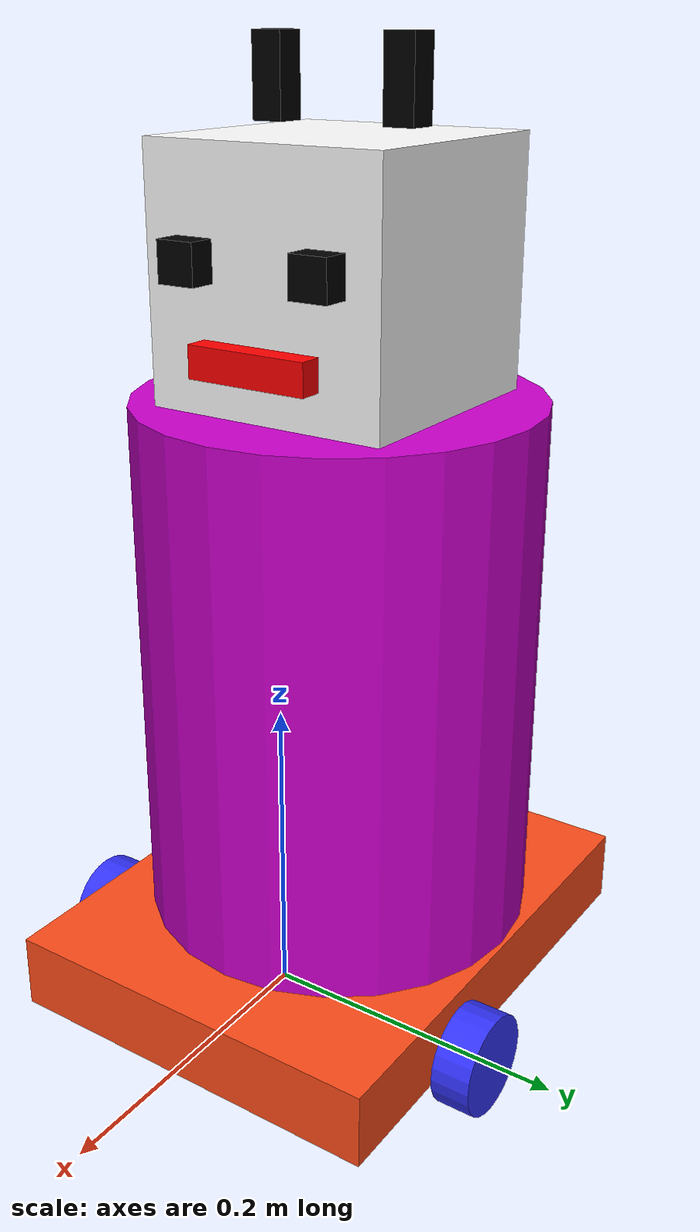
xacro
<?xml version="1.0" ?>
<robot name='robot' xmlns:xacro="http://ros.org/wiki/xacro">

    <xacro:include filename="$(find robot_description)/urdf/gazebo.urdf.xacro" />

    <xacro:property name="body_length" value="0.35"/>
    <xacro:property name="body_radius" value="0.13"/>
    <xacro:property name="body_mass" value="0.1"/>
    <xacro:property name="head_size" value="0.16"/>
    <xacro:property name="head_mass" value="0.1"/>
    <xacro:property name="antenna_x_y" value="0.02"/>
    <xacro:property name="antenna_z" value="0.05"/>
    <xacro:property name="antenna_mass" value="0.2"/>
    <xacro:property name="eye_size" value="0.025"/>
    <xacro:property name="eye_mass" value="0.05"/>
    <xacro:property name="mouth_mass" value="0.15"/>
    <xacro:property name="mouth_x" value="0.02"/>
    <xacro:property name="mouth_y" value="0.08"/>
    <xacro:property name="mouth_z" value="0.02"/>
    <xacro:property name="chassis_length" value="0.335"/>
    <xacro:property name="chassis_width" value="0.265"/>
    <xacro:property name="chassis_height" value="0.05"/>
    <xacro:property name="wheel_radius" value="0.033"/>
    <xacro:property name="wheel_thickness" value="0.026"/>
    <xacro:property name="wheel_mass" value="0.05"/>
    <xacro:property name="wheel_offset_x" value="0.226"/>
    <xacro:property name="wheel_offset_y" value="0.1485"/>
    <xacro:property name="wheel_offset_z" value="0.01"/>
    <xacro:property name="caster_wheel_radius" value="0.01"/>
    <xacro:property name="caster_wheel_mass" value="0.01"/>
    <xacro:property name="caster_wheel_offset_x" value="0.075"/>
    <xacro:property name="caster_wheel_offset_z" value="${wheel_offset_z - wheel_radius + caster_wheel_radius}"/>
    <xacro:property name="mass" value="1.0"/>

    <material name="white">
        <color rgba="1 1 1 1" />
    </material>

    <material name="orange">
        <color rgba="1 0.3 0.1 1"/>
    </material>

    <material name="blue">
        <color rgba="0.2 0.2 1 1"/>
    </material>

    <material name="black">
        <color rgba="0 0 0 1"/>
    </material>

    <material name="red">
        <color rgba="1 0 0 1"/>
    </material>

    <material name="pink">
      <color rgba="0.8 0 0.8 1"/>
    </material>

    <link name="base_link">
    </link>

    <link name="base_footprint">
    </link>

    <joint name="base_footprint_joint" type="fixed">
        <parent link="base_link"/>
        <child link="base_footprint"/>
        <origin xyz="0 0 -0.138" rpy="0 0 0"/>
    </joint>

    <joint name="chassis_joint" type="fixed">
        <parent link="base_link"/>
        <child link="chassis"/>
        <origin xyz="${-wheel_offset_x} 0 ${-wheel_offset_z}"/>
    </joint>

    <link name='chassis'>

    <inertial>
        <origin xyz="${chassis_length/2} 0 ${chassis_height/2}" rpy="0 0 0"/>
        <mass value="${mass}" />
        <inertia ixx="${(1/12) * mass * (chassis_width*chassis_width+chassis_height*chassis_height)}" ixy="0.0" ixz="0.0"
                 iyy="${(1/12) * mass * (chassis_length*chassis_length+chassis_height*chassis_height)}" iyz="0.0"
                 izz="${(1/12) * mass * (chassis_length*chassis_length+chassis_width*chassis_width)}" />
    </inertial>
    <visual>
        <origin xyz="${chassis_length/2} 0 ${chassis_height/2}"/>
        <geometry>
            <box size="${chassis_length} ${chassis_width} ${chassis_height}"/>
        </geometry>
        <material name="orange"/>
    </visual>
    <collision>
        <origin xyz="${chassis_length/2} 0 ${chassis_height/2}"/>
        <geometry>
            <box size="${chassis_length} ${chassis_width} ${chassis_height}"/>
        </geometry>
    </collision>
    </link>

    <link name="body">
    <visual>
      <geometry>
        <cylinder length="${body_length}" radius="${body_radius}"/>
      </geometry>
      <material name="pink"/>
    </visual>
    <collision>
      <geometry>
        <cylinder length="${body_length}" radius="${body_radius}"/>
      </geometry>
    </collision>
    <inertial>
      <mass value="${body_mass}"/>
      <inertia ixx="${(1/12) * body_mass * (3*body_radius*body_radius + body_length*body_length)}" ixy="0.0" ixz="0.0"
               iyy="${(1/12) * body_mass * (3*body_radius*body_radius + body_length*body_length)}" iyz="0.0"
               izz="${(1/2) * body_mass * (body_radius*body_length)}" />
    </inertial>
  </link>

  <joint name="body_joint" type="fixed">
    <parent link="chassis"/>
    <child link="body"/>
    <origin rpy="0 0 0" xyz="0.16 0 0.225"/>
  </joint>

  <link name="head">
    <visual>
      <geometry>
        <box size="${head_size} ${head_size} ${head_size}"/>
      </geometry>
      <material name="white"/>
    </visual>
    <collision>
      <geometry>
        <box size="${head_size} ${head_size} ${head_size}"/>
      </geometry>
    </collision>
    <inertial>
      <mass value="${head_mass}"/>
      <inertia ixx="${(1/12) * head_mass * (head_size*head_size+head_size*head_size)}" ixy="0.0" ixz="0.0"
               iyy="${(1/12) * head_mass * (head_size*head_size+head_size*head_size)}" iyz="0.0"
               izz="${(1/12) * head_mass * (head_size*head_size+head_size*head_size)}" />
    </inertial>
  </link>

  <joint name="head_joint" type="fixed">
    <parent link="body"/>
    <child link="head"/>
    <origin rpy="0 0 0" xyz="0 0 0.25"/>
  </joint>

  <link name="right_antenna">
    <visual>
      <geometry>
        <box size="${antenna_x_y} ${antenna_x_y} ${antenna_z}"/>
      </geometry>
      <material name="black"/>
    </visual>
    <collision>
      <geometry>
        <box size="${antenna_x_y} ${antenna_x_y} ${antenna_z}"/>
      </geometry>
      <origin rpy="0 1.57075 0" xyz="0 0 0"/>
    </collision>
    <inertial>
      <mass value="${antenna_mass}"/>
      <inertia ixx="${(1/12) * antenna_mass * (antenna_x_y*antenna_x_y+antenna_z*antenna_z)}" ixy="0.0" ixz="0.0"
               iyy="${(1/12) * antenna_mass * (antenna_x_y*antenna_x_y+antenna_z*antenna_z)}" iyz="0.0"
               izz="${(1/12) * antenna_mass * (antenna_x_y*antenna_x_y+antenna_x_y*antenna_x_y)}" />
    </inertial>
  </link>

  <joint name="right_antenna_joint" type="fixed">
    <parent link="head"/>
    <child link="right_antenna"/>
    <origin rpy="0 0 0" xyz="0 0.045 0.11"/>
  </joint>

  <link name="left_antenna">
    <visual>
      <geometry>
        <box size="${antenna_x_y} ${antenna_x_y} ${antenna_z}"/>
      </geometry>
      <material name="black"/>
    </visual>
    <collision>
      <geometry>
        <box size="${antenna_x_y} ${antenna_x_y} ${antenna_z}"/>
      </geometry>
      <origin rpy="0 1.57075 0" xyz="0 0 0"/>
    </collision>
    <inertial>
      <mass value="${antenna_mass}"/>
      <inertia ixx="${(1/12) * antenna_mass * (antenna_x_y*antenna_x_y+antenna_z*antenna_z)}" ixy="0.0" ixz="0.0"
               iyy="${(1/12) * antenna_mass * (antenna_x_y*antenna_x_y+antenna_z*antenna_z)}" iyz="0.0"
               izz="${(1/12) * antenna_mass * (antenna_x_y*antenna_x_y+antenna_x_y*antenna_x_y)}" />
    </inertial>
  </link>

  <joint name="left_antenna_joint" type="fixed">
    <parent link="head"/>
    <child link="left_antenna"/>
    <origin rpy="0 0 0" xyz="0 -0.045 0.11"/>
  </joint>

  <link name="right_eye">
    <visual>
      <geometry>
        <box size="${eye_size} ${eye_size} ${eye_size}"/>
      </geometry>
      <material name="black"/>
    </visual>
    <collision>
      <geometry>
        <box size="${eye_size} ${eye_size} ${eye_size}"/>
      </geometry>
      <origin rpy="0 1.57075 0" xyz="0 0 0"/>
    </collision>
    <inertial>
      <mass value="${eye_mass}"/>
      <inertia ixx="${(1/12) * eye_mass * (eye_size*eye_size+eye_size*eye_size)}" ixy="0.0" ixz="0.0"
               iyy="${(1/12) * eye_mass * (eye_size*eye_size+eye_size*eye_size)}" iyz="0.0"
               izz="${(1/12) * eye_mass * (eye_size*eye_size+eye_size*eye_size)}" />
    </inertial>
  </link>

  <joint name="right_eye_joint" type="fixed">
    <parent link="head"/>
    <child link="right_eye"/>
    <origin rpy="0 0 0" xyz="0.085 0.045 0.015"/>
  </joint>

  <link name="left_eye">
    <visual>
      <geometry>
        <box size="${eye_size} ${eye_size} ${eye_size}"/>
      </geometry>
      <material name="black"/>
    </visual>
    <collision>
      <geometry>
        <box size="${eye_size} ${eye_size} ${eye_size}"/>
      </geometry>
      <origin rpy="0 1.57075 0" xyz="0 0 0"/>
    </collision>
    <inertial>
      <mass value="${eye_mass}"/>
      <inertia ixx="${(1/12) * eye_mass * (eye_size*eye_size+eye_size*eye_size)}" ixy="0.0" ixz="0.0"
               iyy="${(1/12) * eye_mass * (eye_size*eye_size+eye_size*eye_size)}" iyz="0.0"
               izz="${(1/12) * eye_mass * (eye_size*eye_size+eye_size*eye_size)}" />
    </inertial>
  </link>

  <joint name="left_eye_joint" type="fixed">
    <parent link="head"/>
    <child link="left_eye"/>
    <origin rpy="0 0 0" xyz="0.085 -0.045 0.015"/>
  </joint>

  <link name="mouth">
    <visual>
      <geometry>
        <box size="${mouth_x} ${mouth_y} ${mouth_z}"/>
      </geometry>
      <material name="red"/>
    </visual>
    <collision>
      <geometry>
        <box size="${mouth_x} ${mouth_y} ${mouth_z}"/>
      </geometry>
      <origin rpy="0 1.57075 0" xyz="0 0 0"/>
    </collision>
    <inertial>
      <mass value="${mouth_mass}"/>
      <inertia ixx="${(1/12) * mouth_mass * (mouth_y*mouth_y+mouth_z*mouth_z)}" ixy="0.0" ixz="0.0"
               iyy="${(1/12) * mouth_mass * (mouth_x*mouth_x+mouth_z*mouth_z)}" iyz="0.0"
               izz="${(1/12) * mouth_mass * (mouth_x*mouth_x+mouth_y*mouth_y)}" />
    </inertial>
  </link>

  <joint name="mouth_joint" type="fixed">
    <parent link="head"/>
    <child link="mouth"/>
    <origin rpy="0 0 0" xyz="0.085 0 -0.04"/>
  </joint>

    <gazebo reference="chassis">
        <material>Gazebo/Orange</material>
    </gazebo>

    <joint name="left_wheel_joint" type="continuous">
        <parent link="base_link"/>
        <child link="left_wheel"/>
        <origin xyz="0 ${wheel_offset_y} 0" rpy="-${pi/2} 0 0" />
        <axis xyz="0 0 1"/>
    </joint>

    <link name="left_wheel">
        <visual>
            <geometry>
                <cylinder radius="${wheel_radius}" length="${wheel_thickness}"/>
            </geometry>
            <material name="blue"/>
        </visual>
        <collision>
            <geometry>
                <sphere radius="${wheel_radius}"/>
            </geometry>
        </collision>
        <inertial>
            <origin xyz="0 0 0" rpy="0 0 0"/>
            <mass value="${wheel_mass}" />
            <inertia ixx="${(1/12) * wheel_mass * (3*wheel_radius*wheel_radius + wheel_thickness*wheel_thickness)}" ixy="0.0" ixz="0.0"
                     iyy="${(1/12) * wheel_mass * (3*wheel_radius*wheel_radius + wheel_thickness*wheel_thickness)}" iyz="0.0"
                     izz="${(1/2) * wheel_mass * (wheel_radius*wheel_radius)}" />
        </inertial>
    </link>

    <gazebo reference="left_wheel">
        <material>Gazebo/Blue</material>
    </gazebo>

    <joint name="right_wheel_joint" type="continuous">
        <parent link="base_link"/>
        <child link="right_wheel"/>
        <origin xyz="0 ${-wheel_offset_y} 0" rpy="${pi/2} 0 0" />
        <axis xyz="0 0 -1"/>
    </joint>

    <link name="right_wheel">
        <visual>
            <geometry>
                <cylinder radius="${wheel_radius}" length="${wheel_thickness}"/>
            </geometry>
            <material name="blue"/>
        </visual>
        <collision>
            <geometry>
                <sphere radius="${wheel_radius}"/>
            </geometry>
        </collision>
        <inertial>
            <origin xyz="0 0 0" rpy="0 0 0"/>
            <mass value="${wheel_mass}" />
            <inertia ixx="${(1/12) * wheel_mass * (3*wheel_radius*wheel_radius + wheel_thickness*wheel_thickness)}" ixy="0.0" ixz="0.0"
                     iyy="${(1/12) * wheel_mass * (3*wheel_radius*wheel_radius + wheel_thickness*wheel_thickness)}" iyz="0.0"
                     izz="${(1/2) * wheel_mass * (wheel_radius*wheel_radius)}" />
        </inertial>
    </link>

    <gazebo reference="right_wheel">
        <material>Gazebo/Blue</material>
    </gazebo>

    <joint name="caster_wheel_joint" type="fixed">
        <parent link="chassis"/>
        <child link="caster_wheel"/>
        <origin xyz="${caster_wheel_offset_x} 0 ${caster_wheel_offset_z}"/>
    </joint>

    <link name="caster_wheel">
        <visual>
            <geometry>
                <sphere radius="${caster_wheel_radius}"/>
            </geometry>
            <material name="white"/>
        </visual>
        <collision>
            <geometry>
                <sphere radius="${caster_wheel_radius}"/>
            </geometry>
        </collision>
        <inertial>
            <origin xyz="0 0 0" rpy="0 0 0"/>
            <mass value="${caster_wheel_mass}" />
            <inertia ixx="${(2/5) * caster_wheel_mass * (caster_wheel_radius*caster_wheel_radius)}" ixy="0.0" ixz="0.0"
                     iyy="${(2/5) * caster_wheel_mass * (caster_wheel_radius*caster_wheel_radius)}" iyz="0.0"
                     izz="${(2/5) * caster_wheel_mass * (caster_wheel_radius*caster_wheel_radius)}" />
        </inertial>
    </link>

    <gazebo reference="caster_wheel">
        <material>Gazebo/White</material>
        <mu1 value="0.001"/>
        <mu2 value="0.001"/>
    </gazebo>

</robot>
